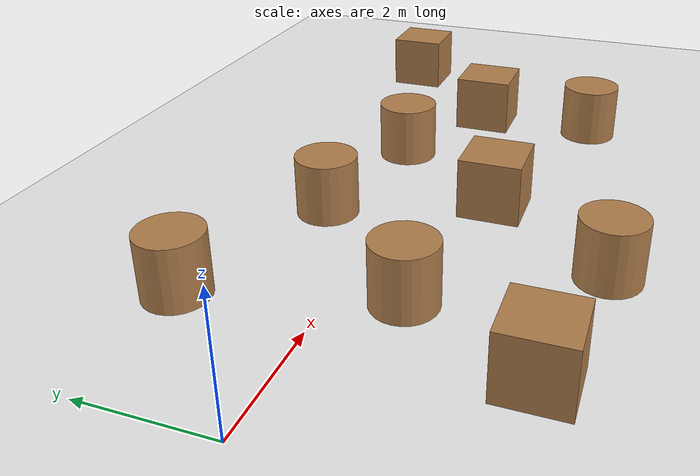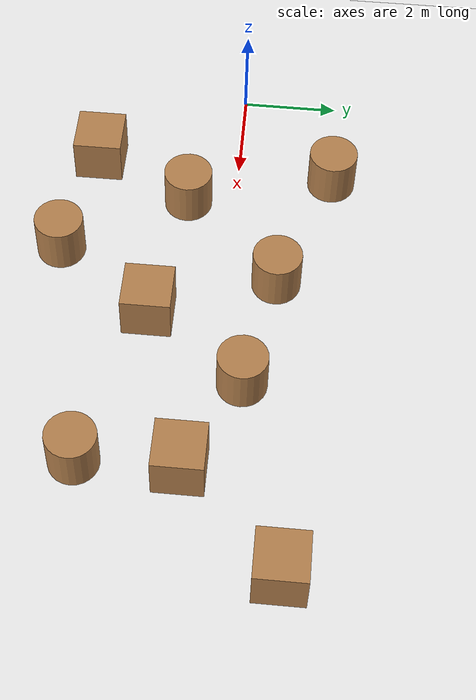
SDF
<sdf version="1.7">
 <world name="default">
  <light name="sun" type="directional">
   <pose>0 0 10 0 -0 0</pose>
   <diffuse>0.8 0.8 0.8 1</diffuse>
   <specular>0.2 0.2 0.2 1</specular>
   <attenuation>
    <range>1000</range>
    <constant>0.9</constant>
    <linear>0.01</linear>
    <quadratic>0.001</quadratic>
   </attenuation>
   <direction>-0.5 0.1 -0.9</direction>
   <spot><inner_angle>0</inner_angle><outer_angle>0</outer_angle><falloff>0</falloff></spot>
  </light>
  <model name="ground_plane">
   <static>True</static>
   <link name="link">
    <collision name="collision">
     <geometry><plane><normal>0 0 1</normal><size>100 100</size></plane></geometry>
     <surface><friction><ode><mu>100</mu><mu2>50</mu2></ode></friction></surface>
    </collision>
    <visual name="visual">
     <cast_shadows>0</cast_shadows>
     <geometry><plane><normal>0 0 1</normal><size>100 100</size></plane></geometry>
     <material>
      <script><uri>file://media/materials/scripts/gazebo.material</uri><name>Gazebo/White</name></script>
     </material>
    </visual>
   </link>
  </model>
  <gravity>0 0 -9.8</gravity>
  <magnetic_field>6e-06 2.3e-05 -4.2e-05</magnetic_field>
  <atmosphere type="adiabatic"/>
  <physics type="ode">
   <max_step_size>0.001</max_step_size>
   <real_time_factor>1</real_time_factor>
   <real_time_update_rate>1000</real_time_update_rate>
  </physics>
  <scene><ambient>0.4 0.4 0.4 1</ambient><background>0.7 0.7 0.7 1</background><shadows>1</shadows></scene>
  <audio><device>default</device></audio>
  <spherical_coordinates>
   <surface_model>EARTH_WGS84</surface_model>
   <latitude_deg>0</latitude_deg>
   <longitude_deg>0</longitude_deg>
   <elevation>0</elevation>
   <heading_deg>0</heading_deg>
  </spherical_coordinates>
  <model name="unit_cylinder">
   <static>true</static>
   <pose>2.2 2.0 0.5 0 0 0</pose>
   <link name="link">
    <inertial>
     <mass>1</mass>
     <inertia><ixx>0.145833</ixx><ixy>0</ixy><ixz>0</ixz><iyy>0.145833</iyy><iyz>0</iyz><izz>0.125</izz></inertia>
    </inertial>
    <collision name="collision">
     <geometry><cylinder><radius>0.5</radius><length>1</length></cylinder></geometry>
    </collision>
    <visual name="visual">
     <geometry><cylinder><radius>0.5</radius><length>1</length></cylinder></geometry>
     <material>
      <script><name>Gazebo/Wood</name><uri>file://media/materials/scripts/gazebo.material</uri></script>
     </material>
    </visual>
   </link>
  </model>
  <model name="unit_box">
   <static>true</static>
   <pose>2.0 -3.0 0.5 0 -0 0</pose>
   <link name="link">
    <inertial>
     <mass>1</mass>
     <inertia>
      <ixx>0.166667</ixx>
      <ixy>0</ixy>
      <ixz>0</ixz>
      <iyy>0.166667</iyy>
      <iyz>0</iyz>
      <izz>0.166667</izz>
     </inertia>
    </inertial>
    <collision name="collision"><geometry><box><size>1 1 1</size></box></geometry></collision>
    <visual name="visual">
     <geometry><box><size>1 1 1</size></box></geometry>
     <material>
      <script><name>Gazebo/Wood</name><uri>file://media/materials/scripts/gazebo.material</uri></script>
     </material>
    </visual>
   </link>
  </model>
  <model name="unit_cylinder_0">
   <static>true</static>
   <pose>3.0 -1.0 0.5 0 -0 0</pose>
   <link name="link">
    <inertial>
     <mass>1</mass>
     <inertia><ixx>0.145833</ixx><ixy>0</ixy><ixz>0</ixz><iyy>0.145833</iyy><iyz>0</iyz><izz>0.125</izz></inertia>
    </inertial>
    <collision name="collision">
     <geometry><cylinder><radius>0.5</radius><length>1</length></cylinder></geometry>
    </collision>
    <visual name="visual">
     <geometry><cylinder><radius>0.5</radius><length>1</length></cylinder></geometry>
     <material>
      <script><name>Gazebo/Wood</name><uri>file://media/materials/scripts/gazebo.material</uri></script>
     </material>
    </visual>
   </link>
  </model>
  <model name="unit_cylinder_1">
   <static>true</static>
   <pose>5.0 1.0 0.5 0 -0 0</pose>
   <link name="link">
    <inertial>
     <mass>1</mass>
     <inertia><ixx>0.145833</ixx><ixy>0</ixy><ixz>0</ixz><iyy>0.145833</iyy><iyz>0</iyz><izz>0.125</izz></inertia>
    </inertial>
    <collision name="collision">
     <geometry><cylinder><radius>0.5</radius><length>1</length></cylinder></geometry>
    </collision>
    <visual name="visual">
     <geometry><cylinder><radius>0.5</radius><length>1</length></cylinder></geometry>
     <material>
      <script><name>Gazebo/Wood</name><uri>file://media/materials/scripts/gazebo.material</uri></script>
     </material>
    </visual>
   </link>
  </model>
  <model name="unit_cylinder_2">
   <static>true</static>
   <pose>4.5 -3.5 0.5 0 -0 0</pose>
   <link name="link">
    <inertial>
     <mass>1</mass>
     <inertia><ixx>0.145833</ixx><ixy>0</ixy><ixz>0</ixz><iyy>0.145833</iyy><iyz>0</iyz><izz>0.125</izz></inertia>
    </inertial>
    <collision name="collision">
     <geometry><cylinder><radius>0.5</radius><length>1</length></cylinder></geometry>
    </collision>
    <visual name="visual">
     <geometry><cylinder><radius>0.5</radius><length>1</length></cylinder></geometry>
     <material>
      <script><name>Gazebo/Wood</name><uri>file://media/materials/scripts/gazebo.material</uri></script>
     </material>
    </visual>
   </link>
  </model>
  <model name="unit_cylinder_3">
   <static>true</static>
   <pose>7.5 0.5 0.5 0 -0 0</pose>
   <link name="link">
    <inertial>
     <mass>1</mass>
     <inertia><ixx>0.145833</ixx><ixy>0</ixy><ixz>0</ixz><iyy>0.145833</iyy><iyz>0</iyz><izz>0.125</izz></inertia>
    </inertial>
    <collision name="collision">
     <geometry><cylinder><radius>0.5</radius><length>1</length></cylinder></geometry>
    </collision>
    <visual name="visual">
     <geometry><cylinder><radius>0.5</radius><length>1</length></cylinder></geometry>
     <material>
      <script><name>Gazebo/Wood</name><uri>file://media/materials/scripts/gazebo.material</uri></script>
     </material>
    </visual>
   </link>
  </model>
  <model name="unit_cylinder_4">
   <static>true</static>
   <pose>3.0 -1.0 0.5 0 -0 0</pose>
   <link name="link">
    <inertial>
     <mass>1</mass>
     <inertia><ixx>0.145833</ixx><ixy>0</ixy><ixz>0</ixz><iyy>0.145833</iyy><iyz>0</iyz><izz>0.125</izz></inertia>
    </inertial>
    <collision name="collision">
     <geometry><cylinder><radius>0.5</radius><length>1</length></cylinder></geometry>
    </collision>
    <visual name="visual">
     <geometry><cylinder><radius>0.5</radius><length>1</length></cylinder></geometry>
     <material>
      <script><name>Gazebo/Wood</name><uri>file://media/materials/scripts/gazebo.material</uri></script>
     </material>
    </visual>
   </link>
  </model>
  <model name="unit_cylinder_5">
   <static>true</static>
   <pose>9.5 -2.5 0.5 0 -0 0</pose>
   <link name="link">
    <inertial>
     <mass>1</mass>
     <inertia><ixx>0.145833</ixx><ixy>0</ixy><ixz>0</ixz><iyy>0.145833</iyy><iyz>0</iyz><izz>0.125</izz></inertia>
    </inertial>
    <collision name="collision">
     <geometry><cylinder><radius>0.5</radius><length>1</length></cylinder></geometry>
    </collision>
    <visual name="visual">
     <geometry><cylinder><radius>0.5</radius><length>1</length></cylinder></geometry>
     <material>
      <script><name>Gazebo/Wood</name><uri>file://media/materials/scripts/gazebo.material</uri></script>
     </material>
    </visual>
   </link>
  </model>
  <model name="unit_box_0">
   <static>true</static>
   <pose>9.5 -0.5 0.5 0 -0 0</pose>
   <link name="link">
    <inertial>
     <mass>1</mass>
     <inertia>
      <ixx>0.166667</ixx>
      <ixy>0</ixy>
      <ixz>0</ixz>
      <iyy>0.166667</iyy>
      <iyz>0</iyz>
      <izz>0.166667</izz>
     </inertia>
    </inertial>
    <collision name="collision"><geometry><box><size>1 1 1</size></box></geometry></collision>
    <visual name="visual">
     <geometry><box><size>1 1 1</size></box></geometry>
     <material>
      <script><name>Gazebo/Wood</name><uri>file://media/materials/scripts/gazebo.material</uri></script>
     </material>
    </visual>
   </link>
  </model>
  <model name="unit_box_1">
   <static>True</static>
   <pose>11.5 1.5 0.5 0 -0 0</pose>
   <link name="link">
    <inertial>
     <mass>1</mass>
     <inertia>
      <ixx>0.166667</ixx>
      <ixy>0</ixy>
      <ixz>0</ixz>
      <iyy>0.166667</iyy>
      <iyz>0</iyz>
      <izz>0.166667</izz>
     </inertia>
    </inertial>
    <collision name="collision"><geometry><box><size>1 1 1</size></box></geometry></collision>
    <visual name="visual">
     <geometry><box><size>1 1 1</size></box></geometry>
     <material>
      <script><name>Gazebo/Wood</name><uri>file://media/materials/scripts/gazebo.material</uri></script>
     </material>
    </visual>
   </link>
  </model>
  <model name="unit_box_2">
   <static>True</static>
   <pose>6.0 -1.5 0.5 0 -0 0</pose>
   <link name="link">
    <inertial>
     <mass>1</mass>
     <inertia>
      <ixx>0.166667</ixx>
      <ixy>0</ixy>
      <ixz>0</ixz>
      <iyy>0.166667</iyy>
      <iyz>0</iyz>
      <izz>0.166667</izz>
     </inertia>
    </inertial>
    <collision name="collision"><geometry><box><size>1 1 1</size></box></geometry></collision>
    <visual name="visual">
     <geometry><box><size>1 1 1</size></box></geometry>
     <material>
      <script><name>Gazebo/Wood</name><uri>file://media/materials/scripts/gazebo.material</uri></script>
     </material>
    </visual>
   </link>
  </model>
 </world>
</sdf>
